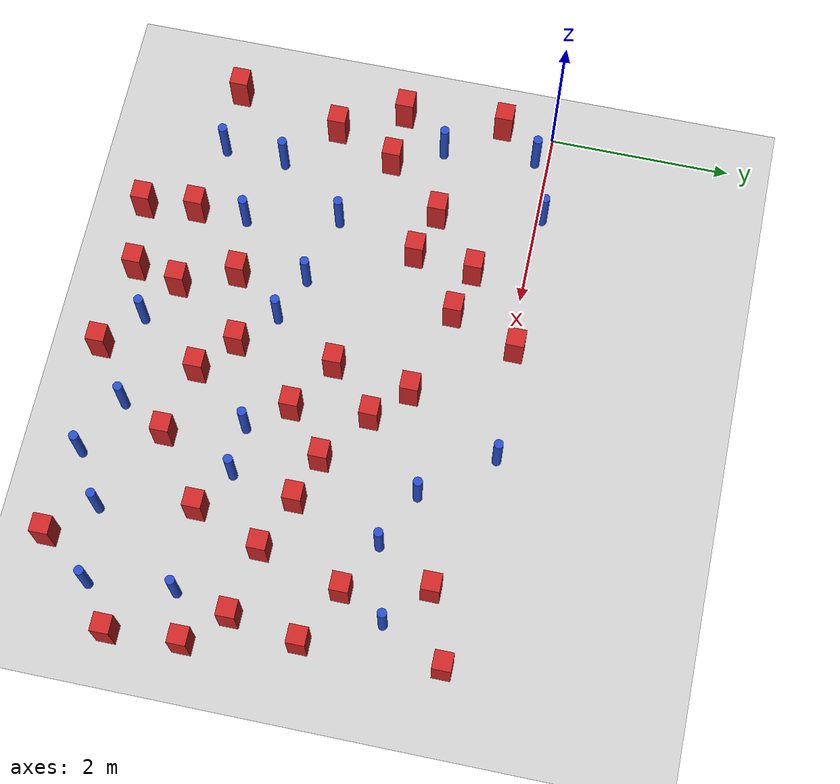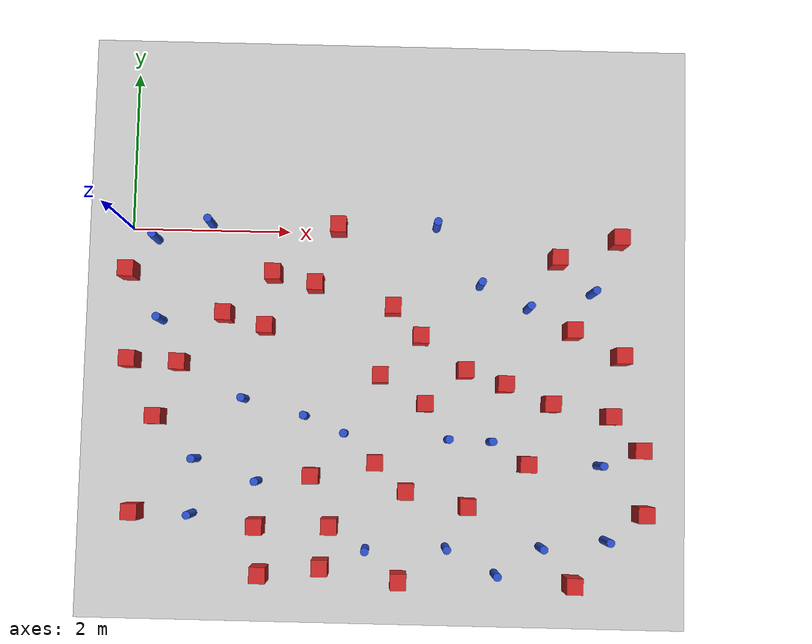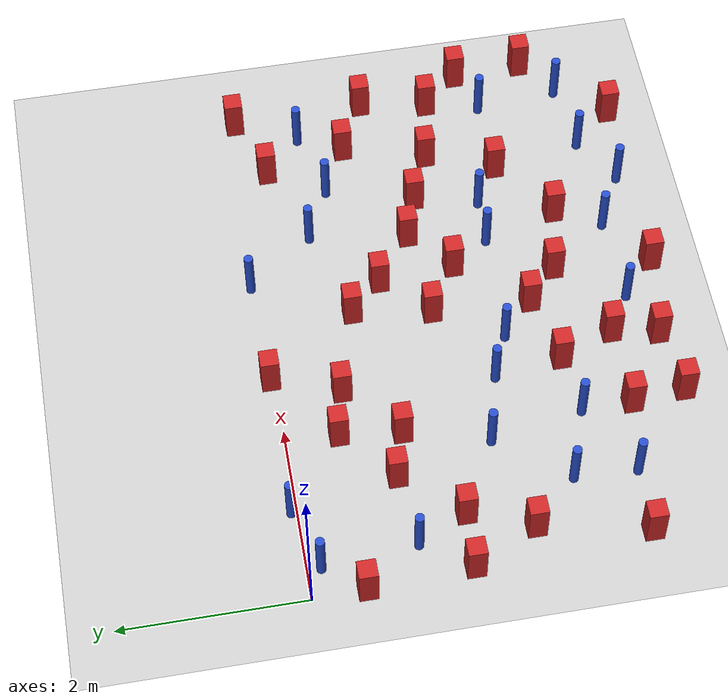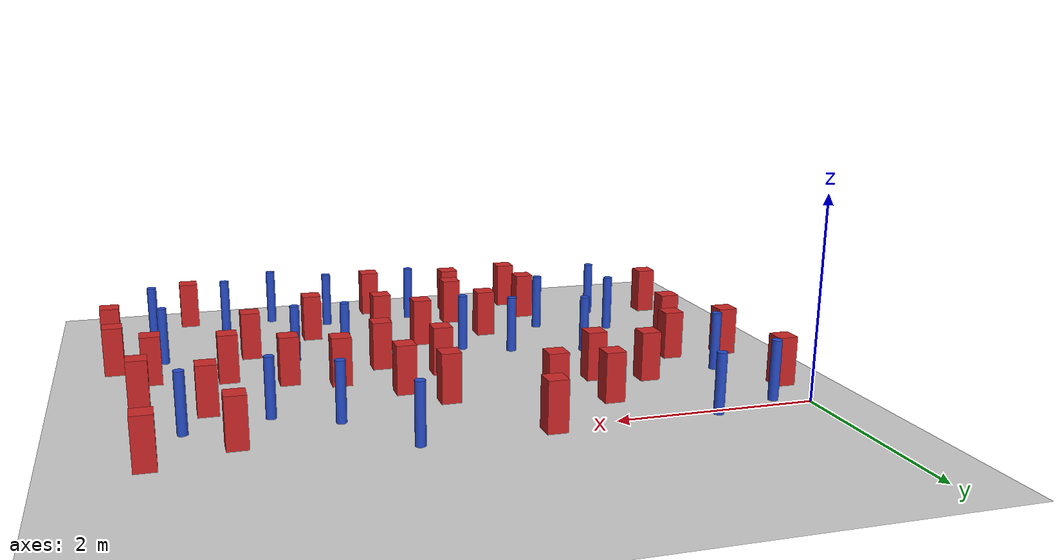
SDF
<sdf version="1.6">
 <world name="default">
  <model name="ground_plane">
   <static>1</static>
   <link name="link">
    <collision name="collision">
     <geometry><plane><normal>0 0 1</normal><size>100 100</size></plane></geometry>
     <surface><friction><ode><mu>100</mu><mu2>50</mu2></ode></friction></surface>
    </collision>
    <visual name="visual">
     <cast_shadows>0</cast_shadows>
     <geometry><plane><normal>0 0 1</normal><size>100 100</size></plane></geometry>
     <material>
      <ambient>1.0 1.0 1.0 1.0</ambient>
      <diffuse>0.8 0.8 0.8 1.0</diffuse>
      <specular>0.01 0.01 0.01 1.000000</specular>
     </material>
    </visual>
   </link>
  </model>
  <model name="NamedLocations">
   <static>true</static>
   <link name="DefaultStart"><pose>8.5 0 0 0 0 3.14</pose></link>
  </model>
  <model name="pole_obstacle3">
   <static>true</static>
   <pose>4.42461220235 -0.647186068513 2.88873142074e-08 -9.90536689837e-09 4.60219948989e-07 -1.2096599496e-07</pose>
   <link name="link">
    <pose>0 0 0.3 0 -0 0</pose>
    <inertial>
     <mass>1</mass>
     <inertia><ixx>0.145833</ixx><ixy>0</ixy><ixz>0</ixz><iyy>0.145833</iyy><iyz>0</iyz><izz>0.125</izz></inertia>
    </inertial>
    <collision name="collision">
     <geometry><cylinder><radius>0.05</radius><length>.6</length></cylinder></geometry>
    </collision>
    <visual name="visual">
     <geometry><cylinder><radius>0.05</radius><length>.6</length></cylinder></geometry>
     <material>
      <script><name>Gazebo/Blue</name><uri>file://media/materials/scripts/gazebo.material</uri></script>
     </material>
    </visual>
   </link>
  </model>
  <model name="pole_obstacle6">
   <static>true</static>
   <pose>1.6934576912 -3.15217316239 2.88873142074e-08 -9.90536689791e-09 4.6021994899e-07 -1.20965994959e-07</pose>
   <link name="link">
    <pose>0 0 0.3 0 -0 0</pose>
    <inertial>
     <mass>1</mass>
     <inertia><ixx>0.145833</ixx><ixy>0</ixy><ixz>0</ixz><iyy>0.145833</iyy><iyz>0</iyz><izz>0.125</izz></inertia>
    </inertial>
    <collision name="collision">
     <geometry><cylinder><radius>0.05</radius><length>.6</length></cylinder></geometry>
    </collision>
    <visual name="visual">
     <geometry><cylinder><radius>0.05</radius><length>.6</length></cylinder></geometry>
     <material>
      <script><name>Gazebo/Blue</name><uri>file://media/materials/scripts/gazebo.material</uri></script>
     </material>
    </visual>
   </link>
  </model>
  <model name="square_post_obstacle4">
   <static>true</static>
   <pose>3.68562988007 -1.31350500014 8.22691968438e-08 7.2212513382e-06 -7.54495500217e-07 2.29674213826e-05</pose>
   <link name="link">
    <pose>0 0 0.25 0 -0 0</pose>
    <inertial>
     <mass>100</mass>
     <inertia>
      <ixx>0.166667</ixx>
      <ixy>0</ixy>
      <ixz>0</ixz>
      <iyy>0.166667</iyy>
      <iyz>0</iyz>
      <izz>0.166667</izz>
     </inertia>
    </inertial>
    <collision name="collision"><geometry><box><size>.2 .2 .5</size></box></geometry></collision>
    <visual name="visual">
     <geometry><box><size>.2 .2 .5</size></box></geometry>
     <material>
      <script><name>Gazebo/Red</name><uri>file://media/materials/scripts/gazebo.material</uri></script>
     </material>
    </visual>
   </link>
  </model>
  <model name="square_post_obstacle11">
   <static>true</static>
   <pose>2.62650904284 0.0469307750388 8.22691968438e-08 7.2212513382e-06 -7.54495500217e-07 2.29674213826e-05</pose>
   <link name="link">
    <pose>0 0 0.25 0 -0 0</pose>
    <inertial>
     <mass>100</mass>
     <inertia>
      <ixx>0.166667</ixx>
      <ixy>0</ixy>
      <ixz>0</ixz>
      <iyy>0.166667</iyy>
      <iyz>0</iyz>
      <izz>0.166667</izz>
     </inertia>
    </inertial>
    <collision name="collision"><geometry><box><size>.2 .2 .5</size></box></geometry></collision>
    <visual name="visual">
     <geometry><box><size>.2 .2 .5</size></box></geometry>
     <material>
      <script><name>Gazebo/Red</name><uri>file://media/materials/scripts/gazebo.material</uri></script>
     </material>
    </visual>
   </link>
  </model>
  <model name="square_post_obstacle12">
   <static>true</static>
   <pose>1.22674798471 -1.0815062226 8.22691968438e-08 7.2212513382e-06 -7.54495500217e-07 2.29674213826e-05</pose>
   <link name="link">
    <pose>0 0 0.25 0 -0 0</pose>
    <inertial>
     <mass>100</mass>
     <inertia>
      <ixx>0.166667</ixx>
      <ixy>0</ixy>
      <ixz>0</ixz>
      <iyy>0.166667</iyy>
      <iyz>0</iyz>
      <izz>0.166667</izz>
     </inertia>
    </inertial>
    <collision name="collision"><geometry><box><size>.2 .2 .5</size></box></geometry></collision>
    <visual name="visual">
     <geometry><box><size>.2 .2 .5</size></box></geometry>
     <material>
      <script><name>Gazebo/Red</name><uri>file://media/materials/scripts/gazebo.material</uri></script>
     </material>
    </visual>
   </link>
  </model>
  <model name="pole_obstacle17">
   <static>true</static>
   <pose>5.93204498698 -2.86877223244 2.88873142074e-08 -9.90536690245e-09 4.6021994898e-07 -1.20965994966e-07</pose>
   <link name="link">
    <pose>0 0 0.3 0 -0 0</pose>
    <inertial>
     <mass>1</mass>
     <inertia><ixx>0.145833</ixx><ixy>0</ixy><ixz>0</ixz><iyy>0.145833</iyy><iyz>0</iyz><izz>0.125</izz></inertia>
    </inertial>
    <collision name="collision">
     <geometry><cylinder><radius>0.05</radius><length>.6</length></cylinder></geometry>
    </collision>
    <visual name="visual">
     <geometry><cylinder><radius>0.05</radius><length>.6</length></cylinder></geometry>
     <material>
      <script><name>Gazebo/Blue</name><uri>file://media/materials/scripts/gazebo.material</uri></script>
     </material>
    </visual>
   </link>
  </model>
  <model name="pole_obstacle18">
   <static>true</static>
   <pose>5.82927272545 -0.721593858547 2.88873142074e-08 -9.90536689837e-09 4.60219948989e-07 -1.2096599496e-07</pose>
   <link name="link">
    <pose>0 0 0.3 0 -0 0</pose>
    <inertial>
     <mass>1</mass>
     <inertia><ixx>0.145833</ixx><ixy>0</ixy><ixz>0</ixz><iyy>0.145833</iyy><iyz>0</iyz><izz>0.125</izz></inertia>
    </inertial>
    <collision name="collision">
     <geometry><cylinder><radius>0.05</radius><length>.6</length></cylinder></geometry>
    </collision>
    <visual name="visual">
     <geometry><cylinder><radius>0.05</radius><length>.6</length></cylinder></geometry>
     <material>
      <script><name>Gazebo/Blue</name><uri>file://media/materials/scripts/gazebo.material</uri></script>
     </material>
    </visual>
   </link>
  </model>
  <model name="square_post_obstacle21">
   <static>true</static>
   <pose>5.58047631022 -1.2054210106 8.22691968438e-08 7.2212513382e-06 -7.54495500217e-07 2.29674213826e-05</pose>
   <link name="link">
    <pose>0 0 0.25 0 -0 0</pose>
    <inertial>
     <mass>100</mass>
     <inertia>
      <ixx>0.166667</ixx>
      <ixy>0</ixy>
      <ixz>0</ixz>
      <iyy>0.166667</iyy>
      <iyz>0</iyz>
      <izz>0.166667</izz>
     </inertia>
    </inertial>
    <collision name="collision"><geometry><box><size>.2 .2 .5</size></box></geometry></collision>
    <visual name="visual">
     <geometry><box><size>.2 .2 .5</size></box></geometry>
     <material>
      <script><name>Gazebo/Red</name><uri>file://media/materials/scripts/gazebo.material</uri></script>
     </material>
    </visual>
   </link>
  </model>
  <model name="pole_obstacle30">
   <static>true</static>
   <pose>2.26349207293 -2.33371636086 2.88873142074e-08 -9.90536690232e-09 4.6021994898e-07 -1.20965994968e-07</pose>
   <link name="link">
    <pose>0 0 0.3 0 -0 0</pose>
    <inertial>
     <mass>1</mass>
     <inertia><ixx>0.145833</ixx><ixy>0</ixy><ixz>0</ixz><iyy>0.145833</iyy><iyz>0</iyz><izz>0.125</izz></inertia>
    </inertial>
    <collision name="collision">
     <geometry><cylinder><radius>0.05</radius><length>.6</length></cylinder></geometry>
    </collision>
    <visual name="visual">
     <geometry><cylinder><radius>0.05</radius><length>.6</length></cylinder></geometry>
     <material>
      <script><name>Gazebo/Blue</name><uri>file://media/materials/scripts/gazebo.material</uri></script>
     </material>
    </visual>
   </link>
  </model>
  <model name="square_post_obstacle24">
   <static>true</static>
   <pose>4.74319959833 -1.88885405446 8.22691968438e-08 7.2212513382e-06 -7.54495500217e-07 2.29674213826e-05</pose>
   <link name="link">
    <pose>0 0 0.25 0 -0 0</pose>
    <inertial>
     <mass>100</mass>
     <inertia>
      <ixx>0.166667</ixx>
      <ixy>0</ixy>
      <ixz>0</ixz>
      <iyy>0.166667</iyy>
      <iyz>0</iyz>
      <izz>0.166667</izz>
     </inertia>
    </inertial>
    <collision name="collision"><geometry><box><size>.2 .2 .5</size></box></geometry></collision>
    <visual name="visual">
     <geometry><box><size>.2 .2 .5</size></box></geometry>
     <material>
      <script><name>Gazebo/Red</name><uri>file://media/materials/scripts/gazebo.material</uri></script>
     </material>
    </visual>
   </link>
  </model>
  <model name="square_post_obstacle26">
   <static>true</static>
   <pose>3.53526430183 -3.23779624241 8.22691968438e-08 7.2212513382e-06 -7.54495500217e-07 2.29674213826e-05</pose>
   <link name="link">
    <pose>0 0 0.25 0 -0 0</pose>
    <inertial>
     <mass>100</mass>
     <inertia>
      <ixx>0.166667</ixx>
      <ixy>0</ixy>
      <ixz>0</ixz>
      <iyy>0.166667</iyy>
      <iyz>0</iyz>
      <izz>0.166667</izz>
     </inertia>
    </inertial>
    <collision name="collision"><geometry><box><size>.2 .2 .5</size></box></geometry></collision>
    <visual name="visual">
     <geometry><box><size>.2 .2 .5</size></box></geometry>
     <material>
      <script><name>Gazebo/Red</name><uri>file://media/materials/scripts/gazebo.material</uri></script>
     </material>
    </visual>
   </link>
  </model>
  <model name="pole_obstacle36">
   <static>true</static>
   <pose>0.915884353382 -2.89308550462 2.88873142074e-08 -9.90536689636e-09 4.60219948994e-07 -1.20965994958e-07</pose>
   <link name="link">
    <pose>0 0 0.3 0 -0 0</pose>
    <inertial>
     <mass>1</mass>
     <inertia><ixx>0.145833</ixx><ixy>0</ixy><ixz>0</ixz><iyy>0.145833</iyy><iyz>0</iyz><izz>0.125</izz></inertia>
    </inertial>
    <collision name="collision">
     <geometry><cylinder><radius>0.05</radius><length>.6</length></cylinder></geometry>
    </collision>
    <visual name="visual">
     <geometry><cylinder><radius>0.05</radius><length>.6</length></cylinder></geometry>
     <material>
      <script><name>Gazebo/Blue</name><uri>file://media/materials/scripts/gazebo.material</uri></script>
     </material>
    </visual>
   </link>
  </model>
  <model name="pole_obstacle47">
   <static>true</static>
   <pose>0.422766478847 -1.1684217178 2.88873142074e-08 -9.90536689905e-09 4.60219948988e-07 -1.2096599496e-07</pose>
   <link name="link">
    <pose>0 0 0.3 0 -0 0</pose>
    <inertial>
     <mass>1</mass>
     <inertia><ixx>0.145833</ixx><ixy>0</ixy><ixz>0</ixz><iyy>0.145833</iyy><iyz>0</iyz><izz>0.125</izz></inertia>
    </inertial>
    <collision name="collision">
     <geometry><cylinder><radius>0.05</radius><length>.6</length></cylinder></geometry>
    </collision>
    <visual name="visual">
     <geometry><cylinder><radius>0.05</radius><length>.6</length></cylinder></geometry>
     <material>
      <script><name>Gazebo/Blue</name><uri>file://media/materials/scripts/gazebo.material</uri></script>
     </material>
    </visual>
   </link>
  </model>
  <model name="square_post_obstacle40">
   <static>true</static>
   <pose>3.14873694881 -2.89406051509 8.22691968438e-08 7.2212513382e-06 -7.54495500217e-07 2.29674213826e-05</pose>
   <link name="link">
    <pose>0 0 0.25 0 -0 0</pose>
    <inertial>
     <mass>100</mass>
     <inertia>
      <ixx>0.166667</ixx>
      <ixy>0</ixy>
      <ixz>0</ixz>
      <iyy>0.166667</iyy>
      <iyz>0</iyz>
      <izz>0.166667</izz>
     </inertia>
    </inertial>
    <collision name="collision"><geometry><box><size>.2 .2 .5</size></box></geometry></collision>
    <visual name="visual">
     <geometry><box><size>.2 .2 .5</size></box></geometry>
     <material>
      <script><name>Gazebo/Red</name><uri>file://media/materials/scripts/gazebo.material</uri></script>
     </material>
    </visual>
   </link>
  </model>
  <model name="square_post_obstacle44">
   <static>true</static>
   <pose>5.32180437083 -2.1219283067 8.22691968438e-08 7.2212513382e-06 -7.54495500217e-07 2.29674213826e-05</pose>
   <link name="link">
    <pose>0 0 0.25 0 -0 0</pose>
    <inertial>
     <mass>100</mass>
     <inertia>
      <ixx>0.166667</ixx>
      <ixy>0</ixy>
      <ixz>0</ixz>
      <iyy>0.166667</iyy>
      <iyz>0</iyz>
      <izz>0.166667</izz>
     </inertia>
    </inertial>
    <collision name="collision"><geometry><box><size>.2 .2 .5</size></box></geometry></collision>
    <visual name="visual">
     <geometry><box><size>.2 .2 .5</size></box></geometry>
     <material>
      <script><name>Gazebo/Red</name><uri>file://media/materials/scripts/gazebo.material</uri></script>
     </material>
    </visual>
   </link>
  </model>
  <model name="pole_obstacle59">
   <static>true</static>
   <pose>0.88658124254 -3.57402991647 2.88873142074e-08 -9.90536689636e-09 4.60219948994e-07 -1.20965994958e-07</pose>
   <link name="link">
    <pose>0 0 0.3 0 -0 0</pose>
    <inertial>
     <mass>1</mass>
     <inertia><ixx>0.145833</ixx><ixy>0</ixy><ixz>0</ixz><iyy>0.145833</iyy><iyz>0</iyz><izz>0.125</izz></inertia>
    </inertial>
    <collision name="collision">
     <geometry><cylinder><radius>0.05</radius><length>.6</length></cylinder></geometry>
    </collision>
    <visual name="visual">
     <geometry><cylinder><radius>0.05</radius><length>.6</length></cylinder></geometry>
     <material>
      <script><name>Gazebo/Blue</name><uri>file://media/materials/scripts/gazebo.material</uri></script>
     </material>
    </visual>
   </link>
  </model>
  <model name="pole_obstacle61">
   <static>true</static>
   <pose>0.329913933457 -0.143398618067 2.88873142074e-08 -9.90536689877e-09 4.60219948988e-07 -1.20965994961e-07</pose>
   <link name="link">
    <pose>0 0 0.3 0 -0 0</pose>
    <inertial>
     <mass>1</mass>
     <inertia><ixx>0.145833</ixx><ixy>0</ixy><ixz>0</ixz><iyy>0.145833</iyy><iyz>0</iyz><izz>0.125</izz></inertia>
    </inertial>
    <collision name="collision">
     <geometry><cylinder><radius>0.05</radius><length>.6</length></cylinder></geometry>
    </collision>
    <visual name="visual">
     <geometry><cylinder><radius>0.05</radius><length>.6</length></cylinder></geometry>
     <material>
      <script><name>Gazebo/Blue</name><uri>file://media/materials/scripts/gazebo.material</uri></script>
     </material>
    </visual>
   </link>
  </model>
  <model name="pole_obstacle67">
   <static>true</static>
   <pose>4.04521997182 -3.91807612381 2.88873142074e-08 -9.90536689988e-09 4.60219948986e-07 -1.20965994963e-07</pose>
   <link name="link">
    <pose>0 0 0.3 0 -0 0</pose>
    <inertial>
     <mass>1</mass>
     <inertia><ixx>0.145833</ixx><ixy>0</ixy><ixz>0</ixz><iyy>0.145833</iyy><iyz>0</iyz><izz>0.125</izz></inertia>
    </inertial>
    <collision name="collision">
     <geometry><cylinder><radius>0.05</radius><length>.6</length></cylinder></geometry>
    </collision>
    <visual name="visual">
     <geometry><cylinder><radius>0.05</radius><length>.6</length></cylinder></geometry>
     <material>
      <script><name>Gazebo/Blue</name><uri>file://media/materials/scripts/gazebo.material</uri></script>
     </material>
    </visual>
   </link>
  </model>
  <model name="square_post_obstacle52">
   <static>true</static>
   <pose>0.16664809843 -3.55686902453 8.22691968438e-08 7.2212513382e-06 -7.54495500217e-07 2.29674213826e-05</pose>
   <link name="link">
    <pose>0 0 0.25 0 -0 0</pose>
    <inertial>
     <mass>100</mass>
     <inertia>
      <ixx>0.166667</ixx>
      <ixy>0</ixy>
      <ixz>0</ixz>
      <iyy>0.166667</iyy>
      <iyz>0</iyz>
      <izz>0.166667</izz>
     </inertia>
    </inertial>
    <collision name="collision"><geometry><box><size>.2 .2 .5</size></box></geometry></collision>
    <visual name="visual">
     <geometry><box><size>.2 .2 .5</size></box></geometry>
     <material>
      <script><name>Gazebo/Red</name><uri>file://media/materials/scripts/gazebo.material</uri></script>
     </material>
    </visual>
   </link>
  </model>
  <model name="square_post_obstacle63">
   <static>true</static>
   <pose>3.75345731977 -2.15209160247 8.22691968438e-08 7.2212513382e-06 -7.54495500217e-07 2.29674213826e-05</pose>
   <link name="link">
    <pose>0 0 0.25 0 -0 0</pose>
    <inertial>
     <mass>100</mass>
     <inertia>
      <ixx>0.166667</ixx>
      <ixy>0</ixy>
      <ixz>0</ixz>
      <iyy>0.166667</iyy>
      <iyz>0</iyz>
      <izz>0.166667</izz>
     </inertia>
    </inertial>
    <collision name="collision"><geometry><box><size>.2 .2 .5</size></box></geometry></collision>
    <visual name="visual">
     <geometry><box><size>.2 .2 .5</size></box></geometry>
     <material>
      <script><name>Gazebo/Red</name><uri>file://media/materials/scripts/gazebo.material</uri></script>
     </material>
    </visual>
   </link>
  </model>
  <model name="square_post_obstacle64">
   <static>true</static>
   <pose>0.0626014090474 -1.68119074151 8.22691968438e-08 7.2212513382e-06 -7.54495500217e-07 2.29674213826e-05</pose>
   <link name="link">
    <pose>0 0 0.25 0 -0 0</pose>
    <inertial>
     <mass>100</mass>
     <inertia>
      <ixx>0.166667</ixx>
      <ixy>0</ixy>
      <ixz>0</ixz>
      <iyy>0.166667</iyy>
      <iyz>0</iyz>
      <izz>0.166667</izz>
     </inertia>
    </inertial>
    <collision name="collision"><geometry><box><size>.2 .2 .5</size></box></geometry></collision>
    <visual name="visual">
     <geometry><box><size>.2 .2 .5</size></box></geometry>
     <material>
      <script><name>Gazebo/Red</name><uri>file://media/materials/scripts/gazebo.material</uri></script>
     </material>
    </visual>
   </link>
  </model>
  <model name="square_post_obstacle71">
   <static>true</static>
   <pose>1.74569702341 -1.22707634889 8.22691968438e-08 7.2212513382e-06 -7.54495500217e-07 2.29674213826e-05</pose>
   <link name="link">
    <pose>0 0 0.25 0 -0 0</pose>
    <inertial>
     <mass>100</mass>
     <inertia>
      <ixx>0.166667</ixx>
      <ixy>0</ixy>
      <ixz>0</ixz>
      <iyy>0.166667</iyy>
      <iyz>0</iyz>
      <izz>0.166667</izz>
     </inertia>
    </inertial>
    <collision name="collision"><geometry><box><size>.2 .2 .5</size></box></geometry></collision>
    <visual name="visual">
     <geometry><box><size>.2 .2 .5</size></box></geometry>
     <material>
      <script><name>Gazebo/Red</name><uri>file://media/materials/scripts/gazebo.material</uri></script>
     </material>
    </visual>
   </link>
  </model>
  <model name="pole_obstacle86">
   <static>true</static>
   <pose>1.01318848592 0.0629881833142 2.88873142074e-08 -9.90536689949e-09 4.60219948987e-07 -1.20965994962e-07</pose>
   <link name="link">
    <pose>0 0 0.3 0 -0 0</pose>
    <inertial>
     <mass>1</mass>
     <inertia><ixx>0.145833</ixx><ixy>0</ixy><ixz>0</ixz><iyy>0.145833</iyy><iyz>0</iyz><izz>0.125</izz></inertia>
    </inertial>
    <collision name="collision">
     <geometry><cylinder><radius>0.05</radius><length>.6</length></cylinder></geometry>
    </collision>
    <visual name="visual">
     <geometry><cylinder><radius>0.05</radius><length>.6</length></cylinder></geometry>
     <material>
      <script><name>Gazebo/Blue</name><uri>file://media/materials/scripts/gazebo.material</uri></script>
     </material>
    </visual>
   </link>
  </model>
  <model name="square_post_obstacle76">
   <static>true</static>
   <pose>5.60767859476 -4.32569959287 8.22691968438e-08 7.2212513382e-06 -7.54495500217e-07 2.29674213826e-05</pose>
   <link name="link">
    <pose>0 0 0.25 0 -0 0</pose>
    <inertial>
     <mass>100</mass>
     <inertia>
      <ixx>0.166667</ixx>
      <ixy>0</ixy>
      <ixz>0</ixz>
      <iyy>0.166667</iyy>
      <iyz>0</iyz>
      <izz>0.166667</izz>
     </inertia>
    </inertial>
    <collision name="collision"><geometry><box><size>.2 .2 .5</size></box></geometry></collision>
    <visual name="visual">
     <geometry><box><size>.2 .2 .5</size></box></geometry>
     <material>
      <script><name>Gazebo/Red</name><uri>file://media/materials/scripts/gazebo.material</uri></script>
     </material>
    </visual>
   </link>
  </model>
  <model name="square_post_obstacle77">
   <static>true</static>
   <pose>0.680616998475 -1.7046439659 8.22691968438e-08 7.2212513382e-06 -7.54495500217e-07 2.29674213826e-05</pose>
   <link name="link">
    <pose>0 0 0.25 0 -0 0</pose>
    <inertial>
     <mass>100</mass>
     <inertia>
      <ixx>0.166667</ixx>
      <ixy>0</ixy>
      <ixz>0</ixz>
      <iyy>0.166667</iyy>
      <iyz>0</iyz>
      <izz>0.166667</izz>
     </inertia>
    </inertial>
    <collision name="collision"><geometry><box><size>.2 .2 .5</size></box></geometry></collision>
    <visual name="visual">
     <geometry><box><size>.2 .2 .5</size></box></geometry>
     <material>
      <script><name>Gazebo/Red</name><uri>file://media/materials/scripts/gazebo.material</uri></script>
     </material>
    </visual>
   </link>
  </model>
  <model name="square_post_obstacle84">
   <static>true</static>
   <pose>3.46405293755 -4.32347575651 8.22691968438e-08 7.2212513382e-06 -7.54495500217e-07 2.29674213826e-05</pose>
   <link name="link">
    <pose>0 0 0.25 0 -0 0</pose>
    <inertial>
     <mass>100</mass>
     <inertia>
      <ixx>0.166667</ixx>
      <ixy>0</ixy>
      <ixz>0</ixz>
      <iyy>0.166667</iyy>
      <iyz>0</iyz>
      <izz>0.166667</izz>
     </inertia>
    </inertial>
    <collision name="collision"><geometry><box><size>.2 .2 .5</size></box></geometry></collision>
    <visual name="visual">
     <geometry><box><size>.2 .2 .5</size></box></geometry>
     <material>
      <script><name>Gazebo/Red</name><uri>file://media/materials/scripts/gazebo.material</uri></script>
     </material>
    </visual>
   </link>
  </model>
  <model name="square_post_obstacle86">
   <static>true</static>
   <pose>5.38943612626 -0.30596903943 8.22691968438e-08 7.2212513382e-06 -7.54495500217e-07 2.29674213826e-05</pose>
   <link name="link">
    <pose>0 0 0.25 0 -0 0</pose>
    <inertial>
     <mass>100</mass>
     <inertia>
      <ixx>0.166667</ixx>
      <ixy>0</ixy>
      <ixz>0</ixz>
      <iyy>0.166667</iyy>
      <iyz>0</iyz>
      <izz>0.166667</izz>
     </inertia>
    </inertial>
    <collision name="collision"><geometry><box><size>.2 .2 .5</size></box></geometry></collision>
    <visual name="visual">
     <geometry><box><size>.2 .2 .5</size></box></geometry>
     <material>
      <script><name>Gazebo/Red</name><uri>file://media/materials/scripts/gazebo.material</uri></script>
     </material>
    </visual>
   </link>
  </model>
  <model name="pole_obstacle94">
   <static>true</static>
   <pose>4.58280692459 -2.60312896247 2.88873142074e-08 -9.90536690245e-09 4.6021994898e-07 -1.20965994966e-07</pose>
   <link name="link">
    <pose>0 0 0.3 0 -0 0</pose>
    <inertial>
     <mass>1</mass>
     <inertia><ixx>0.145833</ixx><ixy>0</ixy><ixz>0</ixz><iyy>0.145833</iyy><iyz>0</iyz><izz>0.125</izz></inertia>
    </inertial>
    <collision name="collision">
     <geometry><cylinder><radius>0.05</radius><length>.6</length></cylinder></geometry>
    </collision>
    <visual name="visual">
     <geometry><cylinder><radius>0.05</radius><length>.6</length></cylinder></geometry>
     <material>
      <script><name>Gazebo/Blue</name><uri>file://media/materials/scripts/gazebo.material</uri></script>
     </material>
    </visual>
   </link>
  </model>
  <model name="pole_obstacle96">
   <static>true</static>
   <pose>3.86282414813 0.08764672177 2.88873142074e-08 -9.90536691979e-09 4.60219948939e-07 -1.20965994984e-07</pose>
   <link name="link">
    <pose>0 0 0.3 0 -0 0</pose>
    <inertial>
     <mass>1</mass>
     <inertia><ixx>0.145833</ixx><ixy>0</ixy><ixz>0</ixz><iyy>0.145833</iyy><iyz>0</iyz><izz>0.125</izz></inertia>
    </inertial>
    <collision name="collision">
     <geometry><cylinder><radius>0.05</radius><length>.6</length></cylinder></geometry>
    </collision>
    <visual name="visual">
     <geometry><cylinder><radius>0.05</radius><length>.6</length></cylinder></geometry>
     <material>
      <script><name>Gazebo/Blue</name><uri>file://media/materials/scripts/gazebo.material</uri></script>
     </material>
    </visual>
   </link>
  </model>
  <model name="pole_obstacle99">
   <static>true</static>
   <pose>1.49637911414 -2.13594542364 2.88873142074e-08 -9.90536689791e-09 4.6021994899e-07 -1.20965994959e-07</pose>
   <link name="link">
    <pose>0 0 0.3 0 -0 0</pose>
    <inertial>
     <mass>1</mass>
     <inertia><ixx>0.145833</ixx><ixy>0</ixy><ixz>0</ixz><iyy>0.145833</iyy><iyz>0</iyz><izz>0.125</izz></inertia>
    </inertial>
    <collision name="collision">
     <geometry><cylinder><radius>0.05</radius><length>.6</length></cylinder></geometry>
    </collision>
    <visual name="visual">
     <geometry><cylinder><radius>0.05</radius><length>.6</length></cylinder></geometry>
     <material>
      <script><name>Gazebo/Blue</name><uri>file://media/materials/scripts/gazebo.material</uri></script>
     </material>
    </visual>
   </link>
  </model>
  <model name="square_post_obstacle96">
   <static>true</static>
   <pose>6.19433944871 -1.5109624413 8.22691968438e-08 7.2212513382e-06 -7.54495500217e-07 2.29674213826e-05</pose>
   <link name="link">
    <pose>0 0 0.25 0 -0 0</pose>
    <inertial>
     <mass>100</mass>
     <inertia>
      <ixx>0.166667</ixx>
      <ixy>0</ixy>
      <ixz>0</ixz>
      <iyy>0.166667</iyy>
      <iyz>0</iyz>
      <izz>0.166667</izz>
     </inertia>
    </inertial>
    <collision name="collision"><geometry><box><size>.2 .2 .5</size></box></geometry></collision>
    <visual name="visual">
     <geometry><box><size>.2 .2 .5</size></box></geometry>
     <material>
      <script><name>Gazebo/Red</name><uri>file://media/materials/scripts/gazebo.material</uri></script>
     </material>
    </visual>
   </link>
  </model>
  <model name="pole_obstacle105">
   <static>true</static>
   <pose>4.65974124168 -4.22466077166 2.88873142074e-08 -9.90536690842e-09 4.60219948965e-07 -1.20965994976e-07</pose>
   <link name="link">
    <pose>0 0 0.3 0 -0 0</pose>
    <inertial>
     <mass>1</mass>
     <inertia><ixx>0.145833</ixx><ixy>0</ixy><ixz>0</ixz><iyy>0.145833</iyy><iyz>0</iyz><izz>0.125</izz></inertia>
    </inertial>
    <collision name="collision">
     <geometry><cylinder><radius>0.05</radius><length>.6</length></cylinder></geometry>
    </collision>
    <visual name="visual">
     <geometry><cylinder><radius>0.05</radius><length>.6</length></cylinder></geometry>
     <material>
      <script><name>Gazebo/Blue</name><uri>file://media/materials/scripts/gazebo.material</uri></script>
     </material>
    </visual>
   </link>
  </model>
  <model name="square_post_obstacle101">
   <static>true</static>
   <pose>1.69350406136 -3.70212380641 8.22691968438e-08 7.2212513382e-06 -7.54495500217e-07 2.29674213826e-05</pose>
   <link name="link">
    <pose>0 0 0.25 0 -0 0</pose>
    <inertial>
     <mass>100</mass>
     <inertia>
      <ixx>0.166667</ixx>
      <ixy>0</ixy>
      <ixz>0</ixz>
      <iyy>0.166667</iyy>
      <iyz>0</iyz>
      <izz>0.166667</izz>
     </inertia>
    </inertial>
    <collision name="collision"><geometry><box><size>.2 .2 .5</size></box></geometry></collision>
    <visual name="visual">
     <geometry><box><size>.2 .2 .5</size></box></geometry>
     <material>
      <script><name>Gazebo/Red</name><uri>file://media/materials/scripts/gazebo.material</uri></script>
     </material>
    </visual>
   </link>
  </model>
  <model name="square_post_obstacle104">
   <static>true</static>
   <pose>4.24581197212 -1.72708767338 8.22691968438e-08 7.2212513382e-06 -7.54495500217e-07 2.29674213826e-05</pose>
   <link name="link">
    <pose>0 0 0.25 0 -0 0</pose>
    <inertial>
     <mass>100</mass>
     <inertia>
      <ixx>0.166667</ixx>
      <ixy>0</ixy>
      <ixz>0</ixz>
      <iyy>0.166667</iyy>
      <iyz>0</iyz>
      <izz>0.166667</izz>
     </inertia>
    </inertial>
    <collision name="collision"><geometry><box><size>.2 .2 .5</size></box></geometry></collision>
    <visual name="visual">
     <geometry><box><size>.2 .2 .5</size></box></geometry>
     <material>
      <script><name>Gazebo/Red</name><uri>file://media/materials/scripts/gazebo.material</uri></script>
     </material>
    </visual>
   </link>
  </model>
  <model name="square_post_obstacle106">
   <static>true</static>
   <pose>0.0021457492201 -0.565267215337 8.22691968438e-08 7.2212513382e-06 -7.54495500217e-07 2.29674213826e-05</pose>
   <link name="link">
    <pose>0 0 0.25 0 -0 0</pose>
    <inertial>
     <mass>100</mass>
     <inertia>
      <ixx>0.166667</ixx>
      <ixy>0</ixy>
      <ixz>0</ixz>
      <iyy>0.166667</iyy>
      <iyz>0</iyz>
      <izz>0.166667</izz>
     </inertia>
    </inertial>
    <collision name="collision"><geometry><box><size>.2 .2 .5</size></box></geometry></collision>
    <visual name="visual">
     <geometry><box><size>.2 .2 .5</size></box></geometry>
     <material>
      <script><name>Gazebo/Red</name><uri>file://media/materials/scripts/gazebo.material</uri></script>
     </material>
    </visual>
   </link>
  </model>
  <model name="pole_obstacle126">
   <static>true</static>
   <pose>5.21669670748 -3.88716579072 2.88873142074e-08 -9.90536690245e-09 4.6021994898e-07 -1.20965994966e-07</pose>
   <link name="link">
    <pose>0 0 0.3 0 -0 0</pose>
    <inertial>
     <mass>1</mass>
     <inertia><ixx>0.145833</ixx><ixy>0</ixy><ixz>0</ixz><iyy>0.145833</iyy><iyz>0</iyz><izz>0.125</izz></inertia>
    </inertial>
    <collision name="collision">
     <geometry><cylinder><radius>0.05</radius><length>.6</length></cylinder></geometry>
    </collision>
    <visual name="visual">
     <geometry><cylinder><radius>0.05</radius><length>.6</length></cylinder></geometry>
     <material>
      <script><name>Gazebo/Blue</name><uri>file://media/materials/scripts/gazebo.material</uri></script>
     </material>
    </visual>
   </link>
  </model>
  <model name="square_post_obstacle122">
   <static>true</static>
   <pose>4.29911087968 -3.40329820885 8.22691968438e-08 7.2212513382e-06 -7.54495500217e-07 2.29674213826e-05</pose>
   <link name="link">
    <pose>0 0 0.25 0 -0 0</pose>
    <inertial>
     <mass>100</mass>
     <inertia>
      <ixx>0.166667</ixx>
      <ixy>0</ixy>
      <ixz>0</ixz>
      <iyy>0.166667</iyy>
      <iyz>0</iyz>
      <izz>0.166667</izz>
     </inertia>
    </inertial>
    <collision name="collision"><geometry><box><size>.2 .2 .5</size></box></geometry></collision>
    <visual name="visual">
     <geometry><box><size>.2 .2 .5</size></box></geometry>
     <material>
      <script><name>Gazebo/Red</name><uri>file://media/materials/scripts/gazebo.material</uri></script>
     </material>
    </visual>
   </link>
  </model>
  <model name="pole_obstacle139">
   <static>true</static>
   <pose>6.02071232159 -3.7887462193 2.88873142074e-08 -9.90536690245e-09 4.6021994898e-07 -1.20965994966e-07</pose>
   <link name="link">
    <pose>0 0 0.3 0 -0 0</pose>
    <inertial>
     <mass>1</mass>
     <inertia><ixx>0.145833</ixx><ixy>0</ixy><ixz>0</ixz><iyy>0.145833</iyy><iyz>0</iyz><izz>0.125</izz></inertia>
    </inertial>
    <collision name="collision">
     <geometry><cylinder><radius>0.05</radius><length>.6</length></cylinder></geometry>
    </collision>
    <visual name="visual">
     <geometry><cylinder><radius>0.05</radius><length>.6</length></cylinder></geometry>
     <material>
      <script><name>Gazebo/Blue</name><uri>file://media/materials/scripts/gazebo.material</uri></script>
     </material>
    </visual>
   </link>
  </model>
  <model name="square_post_obstacle135">
   <static>true</static>
   <pose>6.15386285492 -0.035589223932 8.22691968438e-08 7.2212513382e-06 -7.54495500217e-07 2.29674213826e-05</pose>
   <link name="link">
    <pose>0 0 0.25 0 -0 0</pose>
    <inertial>
     <mass>100</mass>
     <inertia>
      <ixx>0.166667</ixx>
      <ixy>0</ixy>
      <ixz>0</ixz>
      <iyy>0.166667</iyy>
      <iyz>0</iyz>
      <izz>0.166667</izz>
     </inertia>
    </inertial>
    <collision name="collision"><geometry><box><size>.2 .2 .5</size></box></geometry></collision>
    <visual name="visual">
     <geometry><box><size>.2 .2 .5</size></box></geometry>
     <material>
      <script><name>Gazebo/Red</name><uri>file://media/materials/scripts/gazebo.material</uri></script>
     </material>
    </visual>
   </link>
  </model>
  <model name="square_post_obstacle140">
   <static>true</static>
   <pose>2.50380068462 -4.18130180175 8.22691968438e-08 7.22125133819e-06 -7.54495500217e-07 2.29674213826e-05</pose>
   <link name="link">
    <pose>0 0 0.25 0 -0 0</pose>
    <inertial>
     <mass>100</mass>
     <inertia>
      <ixx>0.166667</ixx>
      <ixy>0</ixy>
      <ixz>0</ixz>
      <iyy>0.166667</iyy>
      <iyz>0</iyz>
      <izz>0.166667</izz>
     </inertia>
    </inertial>
    <collision name="collision"><geometry><box><size>.2 .2 .5</size></box></geometry></collision>
    <visual name="visual">
     <geometry><box><size>.2 .2 .5</size></box></geometry>
     <material>
      <script><name>Gazebo/Red</name><uri>file://media/materials/scripts/gazebo.material</uri></script>
     </material>
    </visual>
   </link>
  </model>
  <model name="pole_obstacle150">
   <static>true</static>
   <pose>5.02860811994 -0.929401138507 2.88873142074e-08 -9.90536689837e-09 4.60219948989e-07 -1.2096599496e-07</pose>
   <link name="link">
    <pose>0 0 0.3 0 -0 0</pose>
    <inertial>
     <mass>1</mass>
     <inertia><ixx>0.145833</ixx><ixy>0</ixy><ixz>0</ixz><iyy>0.145833</iyy><iyz>0</iyz><izz>0.125</izz></inertia>
    </inertial>
    <collision name="collision">
     <geometry><cylinder><radius>0.05</radius><length>.6</length></cylinder></geometry>
    </collision>
    <visual name="visual">
     <geometry><cylinder><radius>0.05</radius><length>.6</length></cylinder></geometry>
     <material>
      <script><name>Gazebo/Blue</name><uri>file://media/materials/scripts/gazebo.material</uri></script>
     </material>
    </visual>
   </link>
  </model>
  <model name="square_post_obstacle154">
   <static>true</static>
   <pose>2.36379942801 -3.0722607405 8.22691968438e-08 7.2212513382e-06 -7.54495500217e-07 2.29674213826e-05</pose>
   <link name="link">
    <pose>0 0 0.25 0 -0 0</pose>
    <inertial>
     <mass>100</mass>
     <inertia>
      <ixx>0.166667</ixx>
      <ixy>0</ixy>
      <ixz>0</ixz>
      <iyy>0.166667</iyy>
      <iyz>0</iyz>
      <izz>0.166667</izz>
     </inertia>
    </inertial>
    <collision name="collision"><geometry><box><size>.2 .2 .5</size></box></geometry></collision>
    <visual name="visual">
     <geometry><box><size>.2 .2 .5</size></box></geometry>
     <material>
      <script><name>Gazebo/Red</name><uri>file://media/materials/scripts/gazebo.material</uri></script>
     </material>
    </visual>
   </link>
  </model>
  <model name="pole_obstacle165">
   <static>true</static>
   <pose>4.05225880508 -2.58812450288 2.88873142074e-08 -9.90536690245e-09 4.6021994898e-07 -1.20965994966e-07</pose>
   <link name="link">
    <pose>0 0 0.3 0 -0 0</pose>
    <inertial>
     <mass>1</mass>
     <inertia><ixx>0.145833</ixx><ixy>0</ixy><ixz>0</ixz><iyy>0.145833</iyy><iyz>0</iyz><izz>0.125</izz></inertia>
    </inertial>
    <collision name="collision">
     <geometry><cylinder><radius>0.05</radius><length>.6</length></cylinder></geometry>
    </collision>
    <visual name="visual">
     <geometry><cylinder><radius>0.05</radius><length>.6</length></cylinder></geometry>
     <material>
      <script><name>Gazebo/Blue</name><uri>file://media/materials/scripts/gazebo.material</uri></script>
     </material>
    </visual>
   </link>
  </model>
  <model name="square_post_obstacle162">
   <static>true</static>
   <pose>1.82490909765 -0.562751629441 8.22691968438e-08 7.22125133819e-06 -7.54495500217e-07 2.29674213826e-05</pose>
   <link name="link">
    <pose>0 0 0.25 0 -0 0</pose>
    <inertial>
     <mass>100</mass>
     <inertia>
      <ixx>0.166667</ixx>
      <ixy>0</ixy>
      <ixz>0</ixz>
      <iyy>0.166667</iyy>
      <iyz>0</iyz>
      <izz>0.166667</izz>
     </inertia>
    </inertial>
    <collision name="collision"><geometry><box><size>.2 .2 .5</size></box></geometry></collision>
    <visual name="visual">
     <geometry><box><size>.2 .2 .5</size></box></geometry>
     <material>
      <script><name>Gazebo/Red</name><uri>file://media/materials/scripts/gazebo.material</uri></script>
     </material>
    </visual>
   </link>
  </model>
  <model name="square_post_obstacle166">
   <static>true</static>
   <pose>3.19271462823 -1.81259660943 8.22691968438e-08 7.2212513382e-06 -7.54495500217e-07 2.29674213826e-05</pose>
   <link name="link">
    <pose>0 0 0.25 0 -0 0</pose>
    <inertial>
     <mass>100</mass>
     <inertia>
      <ixx>0.166667</ixx>
      <ixy>0</ixy>
      <ixz>0</ixz>
      <iyy>0.166667</iyy>
      <iyz>0</iyz>
      <izz>0.166667</izz>
     </inertia>
    </inertial>
    <collision name="collision"><geometry><box><size>.2 .2 .5</size></box></geometry></collision>
    <visual name="visual">
     <geometry><box><size>.2 .2 .5</size></box></geometry>
     <material>
      <script><name>Gazebo/Red</name><uri>file://media/materials/scripts/gazebo.material</uri></script>
     </material>
    </visual>
   </link>
  </model>
  <model name="square_post_obstacle171">
   <static>true</static>
   <pose>0.409944966286 -2.38163323306 8.22691968438e-08 7.22125133819e-06 -7.54495500217e-07 2.29674213826e-05</pose>
   <link name="link">
    <pose>0 0 0.25 0 -0 0</pose>
    <inertial>
     <mass>100</mass>
     <inertia>
      <ixx>0.166667</ixx>
      <ixy>0</ixy>
      <ixz>0</ixz>
      <iyy>0.166667</iyy>
      <iyz>0</iyz>
      <izz>0.166667</izz>
     </inertia>
    </inertial>
    <collision name="collision"><geometry><box><size>.2 .2 .5</size></box></geometry></collision>
    <visual name="visual">
     <geometry><box><size>.2 .2 .5</size></box></geometry>
     <material>
      <script><name>Gazebo/Red</name><uri>file://media/materials/scripts/gazebo.material</uri></script>
     </material>
    </visual>
   </link>
  </model>
  <model name="pole_obstacle179">
   <static>true</static>
   <pose>2.75977865736 -2.54017797805 2.88873142074e-08 -9.90536690232e-09 4.6021994898e-07 -1.20965994968e-07</pose>
   <link name="link">
    <pose>0 0 0.3 0 -0 0</pose>
    <inertial>
     <mass>1</mass>
     <inertia><ixx>0.145833</ixx><ixy>0</ixy><ixz>0</ixz><iyy>0.145833</iyy><iyz>0</iyz><izz>0.125</izz></inertia>
    </inertial>
    <collision name="collision">
     <geometry><cylinder><radius>0.05</radius><length>.6</length></cylinder></geometry>
    </collision>
    <visual name="visual">
     <geometry><cylinder><radius>0.05</radius><length>.6</length></cylinder></geometry>
     <material>
      <script><name>Gazebo/Blue</name><uri>file://media/materials/scripts/gazebo.material</uri></script>
     </material>
    </visual>
   </link>
  </model>
  <model name="square_post_obstacle175">
   <static>true</static>
   <pose>3.33061655054 -0.95269912782 8.22691968438e-08 7.2212513382e-06 -7.54495500217e-07 2.29674213826e-05</pose>
   <link name="link">
    <pose>0 0 0.25 0 -0 0</pose>
    <inertial>
     <mass>100</mass>
     <inertia>
      <ixx>0.166667</ixx>
      <ixy>0</ixy>
      <ixz>0</ixz>
      <iyy>0.166667</iyy>
      <iyz>0</iyz>
      <izz>0.166667</izz>
     </inertia>
    </inertial>
    <collision name="collision"><geometry><box><size>.2 .2 .5</size></box></geometry></collision>
    <visual name="visual">
     <geometry><box><size>.2 .2 .5</size></box></geometry>
     <material>
      <script><name>Gazebo/Red</name><uri>file://media/materials/scripts/gazebo.material</uri></script>
     </material>
    </visual>
   </link>
  </model>
  <model name="pole_obstacle181">
   <static>true</static>
   <pose>3.05278144514 -3.95952765166 2.88873142074e-08 -9.90536690455e-09 4.60219948975e-07 -1.20965994972e-07</pose>
   <link name="link">
    <pose>0 0 0.3 0 -0 0</pose>
    <inertial>
     <mass>1</mass>
     <inertia><ixx>0.145833</ixx><ixy>0</ixy><ixz>0</ixz><iyy>0.145833</iyy><iyz>0</iyz><izz>0.125</izz></inertia>
    </inertial>
    <collision name="collision">
     <geometry><cylinder><radius>0.05</radius><length>.6</length></cylinder></geometry>
    </collision>
    <visual name="visual">
     <geometry><cylinder><radius>0.05</radius><length>.6</length></cylinder></geometry>
     <material>
      <script><name>Gazebo/Blue</name><uri>file://media/materials/scripts/gazebo.material</uri></script>
     </material>
    </visual>
   </link>
  </model>
  <model name="square_post_obstacle193">
   <static>true</static>
   <pose>6.06564479938 -2.26159742042 8.22691968438e-08 7.2212513382e-06 -7.54495500217e-07 2.29674213826e-05</pose>
   <link name="link">
    <pose>0 0 0.25 0 -0 0</pose>
    <inertial>
     <mass>100</mass>
     <inertia>
      <ixx>0.166667</ixx>
      <ixy>0</ixy>
      <ixz>0</ixz>
      <iyy>0.166667</iyy>
      <iyz>0</iyz>
      <izz>0.166667</izz>
     </inertia>
    </inertial>
    <collision name="collision"><geometry><box><size>.2 .2 .5</size></box></geometry></collision>
    <visual name="visual">
     <geometry><box><size>.2 .2 .5</size></box></geometry>
     <material>
      <script><name>Gazebo/Red</name><uri>file://media/materials/scripts/gazebo.material</uri></script>
     </material>
    </visual>
   </link>
  </model>
  <model name="square_post_obstacle194">
   <static>true</static>
   <pose>5.02956553779 -2.87210104464 8.22691968438e-08 7.2212513382e-06 -7.54495500217e-07 2.29674213826e-05</pose>
   <link name="link">
    <pose>0 0 0.25 0 -0 0</pose>
    <inertial>
     <mass>100</mass>
     <inertia>
      <ixx>0.166667</ixx>
      <ixy>0</ixy>
      <ixz>0</ixz>
      <iyy>0.166667</iyy>
      <iyz>0</iyz>
      <izz>0.166667</izz>
     </inertia>
    </inertial>
    <collision name="collision"><geometry><box><size>.2 .2 .5</size></box></geometry></collision>
    <visual name="visual">
     <geometry><box><size>.2 .2 .5</size></box></geometry>
     <material>
      <script><name>Gazebo/Red</name><uri>file://media/materials/scripts/gazebo.material</uri></script>
     </material>
    </visual>
   </link>
  </model>
  <model name="square_post_obstacle195">
   <static>true</static>
   <pose>2.35396343929 -0.681744549044 8.22691968438e-08 7.2212513382e-06 -7.54495500217e-07 2.29674213826e-05</pose>
   <link name="link">
    <pose>0 0 0.25 0 -0 0</pose>
    <inertial>
     <mass>100</mass>
     <inertia>
      <ixx>0.166667</ixx>
      <ixy>0</ixy>
      <ixz>0</ixz>
      <iyy>0.166667</iyy>
      <iyz>0</iyz>
      <izz>0.166667</izz>
     </inertia>
    </inertial>
    <collision name="collision"><geometry><box><size>.2 .2 .5</size></box></geometry></collision>
    <visual name="visual">
     <geometry><box><size>.2 .2 .5</size></box></geometry>
     <material>
      <script><name>Gazebo/Red</name><uri>file://media/materials/scripts/gazebo.material</uri></script>
     </material>
    </visual>
   </link>
  </model>
  <model name="square_post_obstacle198">
   <static>true</static>
   <pose>1.75329467121 -4.28252028872 8.22691968438e-08 7.2212513382e-06 -7.54495500217e-07 2.29674213826e-05</pose>
   <link name="link">
    <pose>0 0 0.25 0 -0 0</pose>
    <inertial>
     <mass>100</mass>
     <inertia>
      <ixx>0.166667</ixx>
      <ixy>0</ixy>
      <ixz>0</ixz>
      <iyy>0.166667</iyy>
      <iyz>0</iyz>
      <izz>0.166667</izz>
     </inertia>
    </inertial>
    <collision name="collision"><geometry><box><size>.2 .2 .5</size></box></geometry></collision>
    <visual name="visual">
     <geometry><box><size>.2 .2 .5</size></box></geometry>
     <material>
      <script><name>Gazebo/Red</name><uri>file://media/materials/scripts/gazebo.material</uri></script>
     </material>
    </visual>
   </link>
  </model>
  <model name="square_post_obstacle200">
   <static>true</static>
   <pose>6.4733171537 -3.45177957072 8.22691968438e-08 7.2212513382e-06 -7.54495500217e-07 2.29674213826e-05</pose>
   <link name="link">
    <pose>0 0 0.25 0 -0 0</pose>
    <inertial>
     <mass>100</mass>
     <inertia>
      <ixx>0.166667</ixx>
      <ixy>0</ixy>
      <ixz>0</ixz>
      <iyy>0.166667</iyy>
      <iyz>0</iyz>
      <izz>0.166667</izz>
     </inertia>
    </inertial>
    <collision name="collision"><geometry><box><size>.2 .2 .5</size></box></geometry></collision>
    <visual name="visual">
     <geometry><box><size>.2 .2 .5</size></box></geometry>
     <material>
      <script><name>Gazebo/Red</name><uri>file://media/materials/scripts/gazebo.material</uri></script>
     </material>
    </visual>
   </link>
  </model>
  <model name="square_post_obstacle201">
   <static>true</static>
   <pose>6.43268476872 -2.67118710327 8.22691968438e-08 7.2212513382e-06 -7.54495500217e-07 2.29674213826e-05</pose>
   <link name="link">
    <pose>0 0 0.25 0 -0 0</pose>
    <inertial>
     <mass>100</mass>
     <inertia>
      <ixx>0.166667</ixx>
      <ixy>0</ixy>
      <ixz>0</ixz>
      <iyy>0.166667</iyy>
      <iyz>0</iyz>
      <izz>0.166667</izz>
     </inertia>
    </inertial>
    <collision name="collision"><geometry><box><size>.2 .2 .5</size></box></geometry></collision>
    <visual name="visual">
     <geometry><box><size>.2 .2 .5</size></box></geometry>
     <material>
      <script><name>Gazebo/Red</name><uri>file://media/materials/scripts/gazebo.material</uri></script>
     </material>
    </visual>
   </link>
  </model>
  <model name="square_post_obstacle215">
   <static>true</static>
   <pose>2.60597713625 -3.68017534248 8.22691968438e-08 7.2212513382e-06 -7.54495500217e-07 2.29674213826e-05</pose>
   <link name="link">
    <pose>0 0 0.25 0 -0 0</pose>
    <inertial>
     <mass>100</mass>
     <inertia>
      <ixx>0.166667</ixx>
      <ixy>0</ixy>
      <ixz>0</ixz>
      <iyy>0.166667</iyy>
      <iyz>0</iyz>
      <izz>0.166667</izz>
     </inertia>
    </inertial>
    <collision name="collision"><geometry><box><size>.2 .2 .5</size></box></geometry></collision>
    <visual name="visual">
     <geometry><box><size>.2 .2 .5</size></box></geometry>
     <material>
      <script><name>Gazebo/Red</name><uri>file://media/materials/scripts/gazebo.material</uri></script>
     </material>
    </visual>
   </link>
  </model>
 </world>
</sdf>
